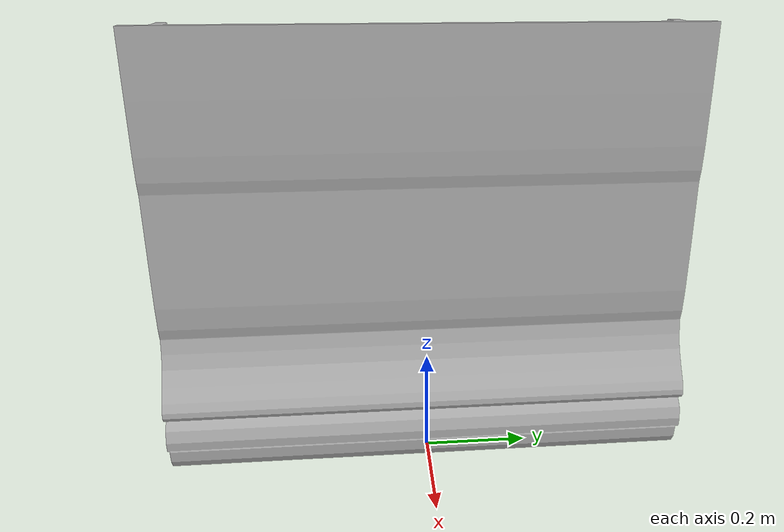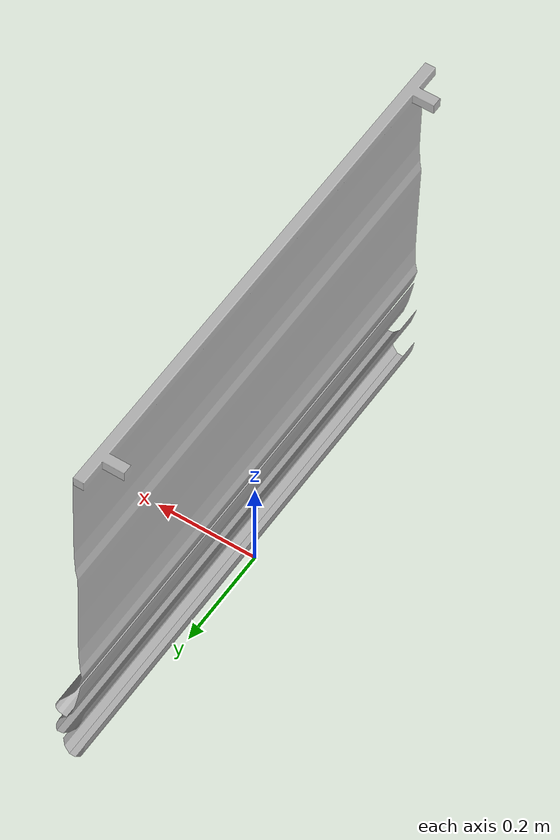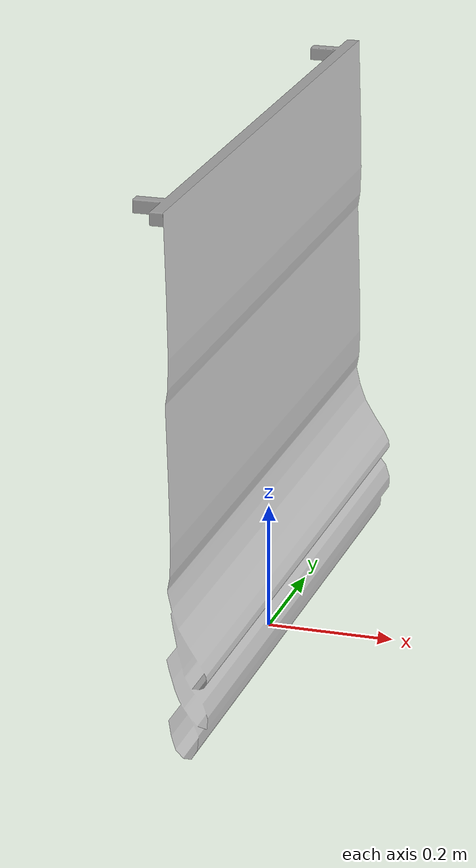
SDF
<?xml version='1.0'?>
<sdf version='1.4'>
  <model name='621'>
    <pose>0 0 0 0 0 0</pose>
    <static>true</static>
    <link name='link'>
      <collision name='collision'>
        <pose>0 0 0 0 0 0</pose>
        <geometry>
          <box>
            <size>0.119933 1 2</size>
          </box>
        </geometry>
      </collision>
      <visual name='visual'>
        <pose>0 0 0 0 0 0</pose>
        <geometry>
          <mesh><uri>model://621/621.dae</uri></mesh>
        </geometry>
      </visual>
    </link>
  </model>
</sdf>
